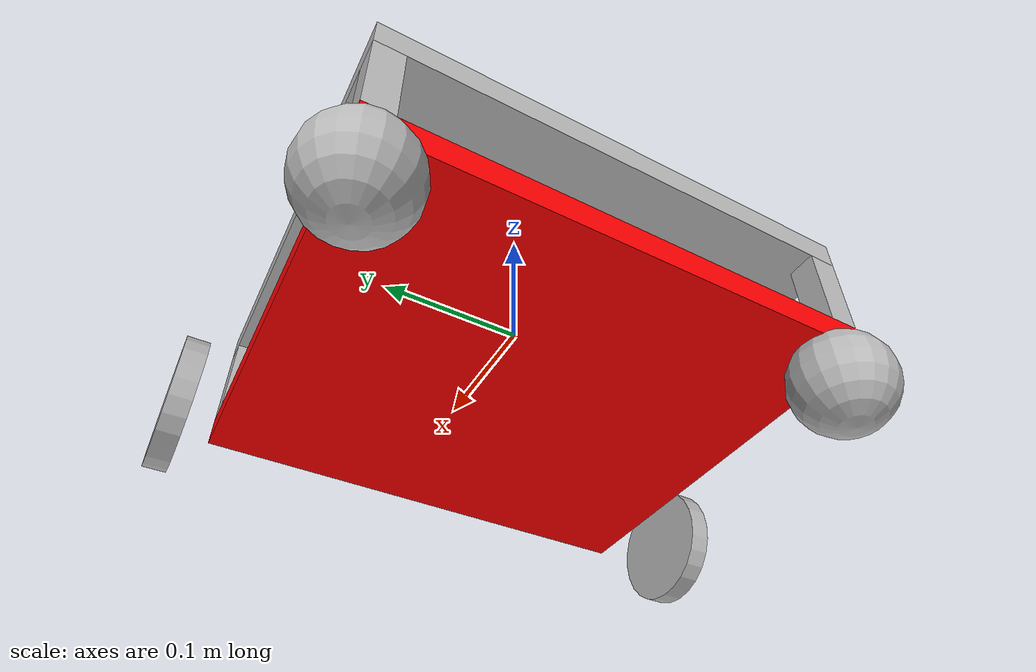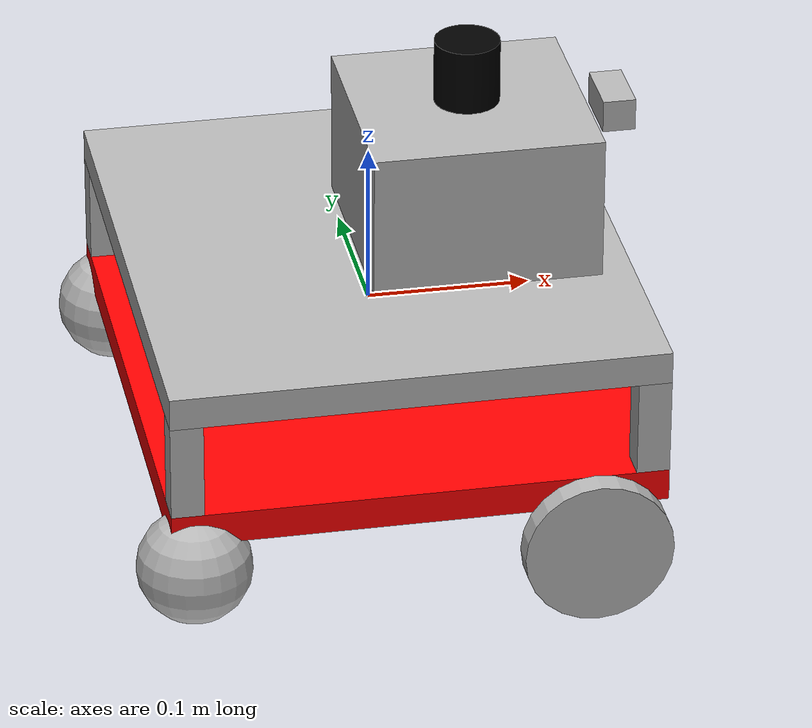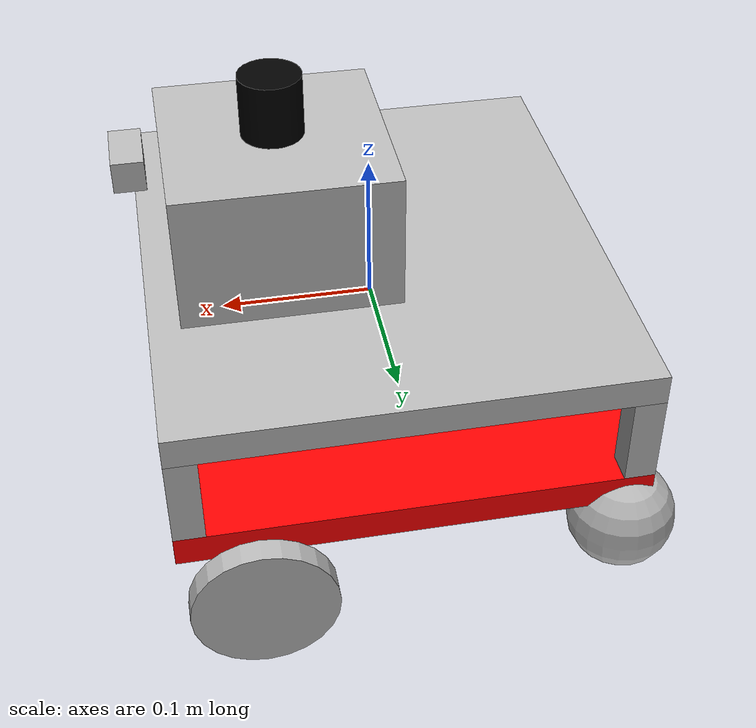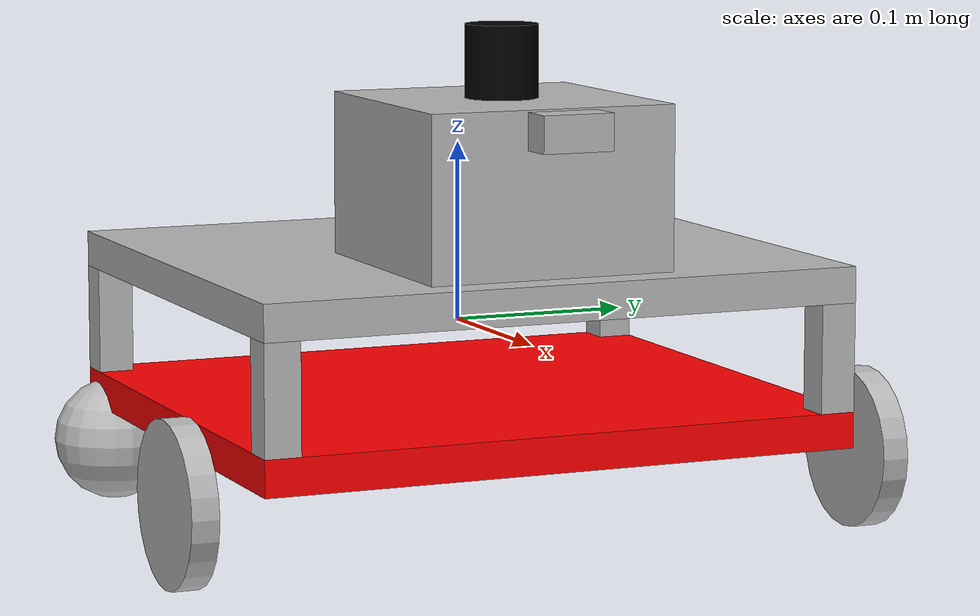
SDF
<?xml version="1.0" ?>
<sdf version="1.5">
  <model name="two_wheeled_robot">
  <static>false</static>

  <!-- ****************** ROBOT BASE FOOTPRINT ***************************  -->
  <pose>0.0 0.0 0.0 0.0 0.0 0.0</pose>
  <link name="base_footprint"/>

  <!-- ********************** ROBOT BASE *********************************  -->
  <link name="base_link">

    <collision name="base_collision">
      <pose>0 0 0.1 0 0 0</pose>
      <geometry>
        <box>
          <size>0.30 0.34 0.02</size>
        </box>
      </geometry>

    </collision>

    <visual name="base_visual">
      <pose>0 0 -0.05 0 0 0</pose>
      <geometry>
        <box>
          <size>0.30 0.34 0.02</size>
        </box>
      </geometry>
      <material>
        <ambient>1.0 0.0 0.0 1.0</ambient>
        <diffuse>1.0 0.0 0.0 1.0</diffuse>
        <specular>0.0 0.0 0.0 1.0</specular>
        <emissive>0.0 0.0 0.0 1.0</emissive>
      </material>
    </visual>
     <inertial>
     		 <ixx>0.004878</ixx>
				  <ixy>0</ixy>
				  <ixz>0</ixz>
				  <iyy>0.00090164</iyy>
				  <iyz>-0.00014394</iyz>
				  <izz>0.0042946</izz>
      	<mass>10</mass>
      </inertial>
  </link>

  <link name="left_front_lower_pillar">
  	<visual name="visual">
      <pose>0.14 .16 -0.01 0 0 0</pose>
      <geometry>
        <box>
          <size>0.02 0.02 0.06</size>
        </box>
      </geometry>
     </visual>
  </link>

  <link name="right_front_lower_pillar">
  	<visual name="visual">
      <pose>0.14 -0.16 -0.01 0 0 0</pose>
      <geometry>
        <box>
          <size>0.02 0.02 0.06</size>
        </box>
      </geometry>
     </visual>
  </link>

  <link name="right_rear_lower_pillar">
  	<visual name="visual">
      <pose>-0.14 -0.16 -0.01 0 0 0</pose>
      <geometry>
        <box>
          <size>0.02 0.02 0.06</size>
        </box>
      </geometry>
     </visual>
  </link>
  <link name="left_rear_lower_pillar">
  	<visual name="visual">
      <pose>-0.14 0.16 -0.01 0 0 0</pose>
      <geometry>
        <box>
          <size>0.02 0.02 0.06</size>
        </box>
      </geometry>
     </visual>
  </link>
  <link name="mid_platform">
			<visual name="mid_visual">
		    <pose>0 0 0.03 1.5707963267949 0 3.141592654</pose>
		    <geometry>
		      <box>
		        <size>0.30 0.02 0.34</size>
		      </box>
		    </geometry>
		  </visual>
		  <collision name="collision">
		    <pose>0 0 0.03 1.5707963267949 0 3.141592654</pose>
		    <geometry>
		      <box>
		        <size>0.30 0.02 0.34</size>
		      </box>
		    </geometry>
		  </collision>
		  <inertial>
     		 <ixx>0.004878</ixx>
				  <ixy>0</ixy>
				  <ixz>0</ixz>
				  <iyy>0.00090164</iyy>
				  <iyz>-0.00014394</iyz>
				  <izz>0.0042946</izz>
      	<mass>10</mass>
      </inertial>
   </link>
   <link name="sensor_tower">
			<visual name="visual">
		    <pose>0.06 0 0.08 0 0 0</pose>
		    <geometry>
		      <box>
		        <size>0.14 0.14 0.1</size>
		      </box>
		    </geometry>
		  </visual>
		  <collision name="collision">
		    <pose>0.06 0 0.08 0 0 0</pose>
		    <geometry>
		      <box>
		        <size>0.14 0.14 0.1</size>
		      </box>
		    </geometry>
		  </collision>
		  <inertial>
     		  <ixx>0.004878</ixx>
				  <ixy>0</ixy>
				  <ixz>0</ixz>
				  <iyy>0.00090164</iyy>
				  <iyz>-0.00014394</iyz>
				  <izz>0.000006</izz>
      	<mass>1</mass>
      </inertial>
   </link>
  <!-- *********************** CAMERA ********************************** -->
  <link name="camera_link">

 		<visual name="camera_visual">
 			<pose>0.15 0 0.12 0 0 0</pose>
      <geometry>
    		<box>
    			<size>0.02 0.04 0.02</size>
    		</box>
      </geometry>
    </visual>
		<collision name="camera_collision">
		  <pose>0.15 0 0.12 0 0 0</pose>
		  <geometry>
    		<box>
    			<size>0.02 0.04 0.02</size>
    		</box>
      </geometry>
		</collision>
    <sensor name='camera1' type='camera'>
    	<pose>0.15 0 0.12 0 0 0</pose>
				<camera name="head">
					<horizontal_fov>1.3962634</horizontal_fov>
					<image>
					  <width>640</width>
					  <height>480</height>
					  <format>R8G8B8</format>
					</image>
					<clip>
					  <near>0.1</near>
					  <far>300</far>
					</clip>
				</camera>
				<update_rate>30</update_rate>
				<visualize>1</visualize>
				<plugin name="camera_controller" filename="libgazebo_ros_camera.so">
					<always_on>true</always_on>
					<camera_name>main_camera</camera_name>
					<imageTopicName>image_raw</imageTopicName>
					<cameraInfoTopicName>camera_info</cameraInfoTopicName>
					<frame_name>camera_link</frame_name>
			</plugin>
		</sensor>
  </link>

  <!-- *********************** IMU SENSOR SETUP **************************  -->
  <link name="imu_link">
    <gravity>true</gravity>
    <sensor name="bmb_imu" type="imu">
      <always_on>true</always_on>
      <update_rate>100</update_rate>
      <visualize>true</visualize>
      <imu>
        <orientation>
          <x>
            <noise type="gaussian">
              <mean>0.0</mean>
              <stddev>2e-3</stddev>
            </noise>
          </x>
          <y>
            <noise type="gaussian">
              <mean>0.0</mean>
              <stddev>2e-3</stddev>
            </noise>
          </y>
          <z>
            <noise type="gaussian">
              <mean>0.0</mean>
              <stddev>2e-3</stddev>
            </noise>
          </z>
        </orientation>
        <angular_velocity>
          <x>
            <noise type="gaussian">
              <mean>0.0</mean>
              <stddev>2e-4</stddev>
            </noise>
          </x>
          <y>
            <noise type="gaussian">
              <mean>0.0</mean>
              <stddev>2e-4</stddev>
            </noise>
          </y>
          <z>
            <noise type="gaussian">
              <mean>0.0</mean>
              <stddev>2e-4</stddev>
            </noise>
          </z>
        </angular_velocity>
        <linear_acceleration>
          <x>
            <noise type="gaussian">
              <mean>0.0</mean>
              <stddev>1.7e-2</stddev>
            </noise>
          </x>
          <y>
            <noise type="gaussian">
              <mean>0.0</mean>
              <stddev>1.7e-2</stddev>
            </noise>
          </y>
          <z>
            <noise type="gaussian">
              <mean>0.0</mean>
              <stddev>1.7e-2</stddev>
            </noise>
          </z>
        </linear_acceleration>
      </imu>
      <plugin name="basic_mobile_bot_imu" filename="libgazebo_ros_imu_sensor.so">
        <initial_orientation_as_reference>false</initial_orientation_as_reference>
        <frame_name>imu_link</frame_name>
        <ros>
          <namespace>/imu</namespace>
          <remapping>~/out:=data</remapping>
        </ros>
      </plugin>
    </sensor>
  </link>

  <!-- *********************** GPS SETUP *********************************  -->
  <link name="gps_link">
    <sensor name="bmb_gps" type="gps">
      <always_on>true</always_on>
      <update_rate>10.0</update_rate>
      <gps>
        <position_sensing>
          <horizontal>
            <noise type="gaussian">
              <mean>0.0</mean>
              <stddev>1e-2</stddev>
            </noise>
          </horizontal>
          <vertical>
            <noise type="gaussian">
              <mean>0.0</mean>
              <stddev>1</stddev>
            </noise>
          </vertical>
        </position_sensing>
      </gps>
      <plugin name="basic_mobile_bot_gps" filename="libgazebo_ros_gps_sensor.so">
        <ros>
          <remapping>~/out:=gps/fix</remapping>
        </ros>
      </plugin>
    </sensor>
  </link>

  <!-- *********************** DRIVE WHEELS ******************************  -->
  <link name="drivewhl_l_link">
    <pose>0.10 0.2 -0.07 0 1.570796 1.570796</pose>

    <collision name="drivewhl_l_collision">
      <geometry>
        <cylinder>
          <radius>0.045</radius>
          <length>0.015</length>
        </cylinder>
      </geometry>
    </collision>

    <visual name="drivewhl_l_visual">
      <geometry>
        <cylinder>
          <radius>0.045</radius>
          <length>0.015</length>
        </cylinder>
      </geometry>
    </visual>
  </link>

  <link name="drivewhl_r_link">
    <pose>0.10 -0.2 -0.07 0 1.570796 1.570796</pose>

    <collision name="drivewhl_r_collision">
      <geometry>
        <cylinder>
          <radius>0.045</radius>
          <length>0.015</length>
        </cylinder>
      </geometry>
    </collision>

    <visual name="drivewhl_r_visual">
      <geometry>
        <cylinder>
          <radius>0.045</radius>
          <length>0.015</length>
        </cylinder>
      </geometry>
    </visual>
  </link>

  <!-- *********************** CASTER WHEELS ******************************  -->

  <link name='rear_caster_l'>
    <pose>-0.135 0.16 -0.08 0 0 0</pose>
    <collision name='collision'>
      <geometry>
            <sphere>
                <radius>0.035</radius>
            </sphere>
        </geometry>
      <surface>
            <friction>
                <ode>
                    <mu>0.000008</mu>
                    <mu2>0.000008</mu2>
                    <slip1>0.0</slip1>
                    <slip2>0.0</slip2>
                </ode>
            </friction>
        </surface>
    </collision>
    <visual name="rear_caster_visual_r">
      <geometry>
            <sphere>
                <radius>0.035</radius>
            </sphere>
        </geometry>
    </visual>
    <inertial>
          <origin xyz="0 0 0" rpy="0 0 0"/>
          <mass value="0.25"/>
          <inertia ixx="0.1" ixy="0.0" ixz="0.0" iyy="0.1"  iyz="0.0" izz="0.1"/>
      </inertial>
  </link>

  <link name='rear_caster_r'>
    <pose>-0.135 -0.16 -0.08 0 0 0</pose>
    <collision name='collision'>
      <geometry>
            <sphere>
                <radius>0.035</radius>
            </sphere>
        </geometry>
      	<surface>
            <friction>
                <ode>
                    <mu>0.000008</mu>
                    <mu2>0.000008</mu2>
                    <slip1>0.0</slip1>
                    <slip2>0.0</slip2>
                </ode>
            </friction>
        </surface>
    </collision>
    <visual name="rear_caster_visual_r">
      <geometry>
            <sphere>
                <radius>0.035</radius>
            </sphere>
        </geometry>
    </visual>
  </link>

  <!-- ****************************** LIDAR *****************************    -->
	<link name="lidar_link">
		<inertial>
		  <pose>0.06 0 0.15 0 0 0</pose>
		  <inertia>
		    <ixx>0.001</ixx>
		    <ixy>0.000</ixy>
		    <ixz>0.000</ixz>
		    <iyy>0.001</iyy>
		    <iyz>0.000</iyz>
		    <izz>0.001</izz>
		  </inertia>
		  <mass>0.114</mass>
		</inertial>

		<collision name="lidar_collision">
		  <pose>0.06 0 0.15 0 0 0</pose>
		  <geometry>
		    <cylinder>
		      <radius>0.02</radius>
		      <length>0.04</length>
		    </cylinder>
		  </geometry>
		</collision>

		<visual name="lidar_visual">
		  <pose>0.06 0 0.15 0 0 0</pose>
		  <geometry>
		    <cylinder>
		      <radius>0.02</radius>
		      <length>0.04</length>
		    </cylinder>
		  </geometry>
		  <material>
		    <ambient>0.0 0.0 0.0 1.0</ambient>
		    <diffuse>0.0 0.0 0.0 1.0</diffuse>
		    <specular>0.0 0.0 0.0 1.0</specular>
		    <emissive>0.0 0.0 0.0 1.0</emissive>
		  </material>
		</visual>

		<sensor name="lidar" type="ray">
		  <pose>0.06 0 0.18 0 0 0</pose>
		  <always_on>true</always_on>
		  <visualize>true</visualize>
		  <update_rate>5</update_rate>
		  <ray>
		    <scan>
		      <horizontal>
		        <samples>180</samples>
		        <resolution>1.00000</resolution>
		        <min_angle>0.000000</min_angle>
		        <max_angle>6.280000</max_angle>
		      </horizontal>
		    </scan>
		    <range>
		      <min>0.120000</min>
		      <max>10.0</max>
		      <resolution>0.015000</resolution>
		    </range>
		    <noise>
		      <type>gaussian</type>
		      <mean>0.0</mean>
		      <stddev>0.01</stddev>
		    </noise>
		  </ray>
		  <plugin name="scan" filename="libgazebo_ros_ray_sensor.so">
		    <ros>
		      <remapping>~/out:=scan</remapping>
		    </ros>
		    <output_type>sensor_msgs/LaserScan</output_type>
		    <frame_name>lidar_link</frame_name>
		  </plugin>
		</sensor>
	</link>

  <!-- ************************ JOINTS ***********************************  -->
  <!-- Pose of the joint is the same as the child link frame -->
  <!-- Axis is the axis of rotation relative to the child link frame -->

  <joint name="base_joint" type="fixed">
    <parent>base_footprint</parent>
    <child>base_link</child>
    <pose>0 0 0 0 0 0</pose>
  </joint>

  <joint name="mid_platform_joint" type="fixed">
    <parent>base_link</parent>
    <child>mid_platform</child>
  </joint>
  <joint name="sensor_tower" type="fixed">
    <parent>base_link</parent>
    <child>sensor_tower</child>
  </joint>
  <joint name="r_front_piller" type="fixed">
  	<parent>base_link</parent>
  	<child>right_front_lower_pillar</child>
 	</joint>
 	<joint name="l_front_piller" type="fixed">
  	<parent>base_link</parent>
  	<child>left_front_lower_pillar</child>
 	</joint>

 	<joint name="r_rear_piller" type="fixed">
  	<parent>base_link</parent>
  	<child>right_rear_lower_pillar</child>
 	</joint>
 	<joint name="l_rear_piller" type="fixed">
  	<parent>base_link</parent>
  	<child>left_rear_lower_pillar</child>
 	</joint>

  <joint name="drivewhl_l_joint" type="revolute">
    <parent>base_link</parent>
    <child>drivewhl_l_link</child>
    <pose>0 0 0 0 0 0</pose>
    <axis>
      <xyz>0 0 1</xyz>
    </axis>
  </joint>

  <joint name="drivewhl_r_joint" type="revolute">
    <parent>base_link</parent>
    <child>drivewhl_r_link</child>
    <pose>0 0 0 0 0 0</pose>
    <axis>
      <xyz>0 0 1</xyz>
    </axis>
  </joint>

  <joint name='caster_joint_l' type='ball'>
    <parent>base_link</parent>
    <child>rear_caster_l</child>
  </joint>

  <joint name='caster_joint_r' type='ball'>
    <parent>base_link</parent>
    <child>rear_caster_r</child>
  </joint>

	<joint name="camera_joint" type="fixed">
    <parent>base_link</parent>
    <child>camera_link</child>
    <pose>0 0 0 0 0 0</pose>
  </joint>

  <joint name="lidar_joint" type="fixed">
    <parent>base_link</parent>
    <child>lidar_link</child>
    <pose>0 0 0 0 0 0</pose>
  </joint>

  <joint name="imu_joint" type="fixed">
    <parent>base_link</parent>
    <child>imu_link</child>
    <pose>0 0 0 0 0 0</pose>
  </joint>

  <joint name="gps_joint" type="fixed">
    <parent>base_link</parent>
    <child>gps_link</child>
    <pose>0 0 0 0 0 0</pose>
  </joint>

 <!-- *********************** WHEEL ODOMETRY ***************************    -->
  <plugin name="basic_mobile_bot_diff_drive" filename="libgazebo_ros_diff_drive.so">

    <update_rate>30</update_rate>

    <!-- wheels -->
    <left_joint>drivewhl_l_joint</left_joint>
    <right_joint>drivewhl_r_joint</right_joint>

    <!-- kinematics -->
    <wheel_separation>0.52</wheel_separation>
    <wheel_diameter>0.28</wheel_diameter>

    <!-- limits -->
    <max_wheel_torque>20</max_wheel_torque>
    <max_wheel_acceleration>1.0</max_wheel_acceleration>

    <!-- Receive velocity commands on this ROS topic -->
    <command_topic>cmd_vel</command_topic>

    <!-- output -->
    <!-- When false, publish no wheel odometry data to a ROS topic -->
    <publish_odom>true</publish_odom>

    <!-- When true, publish coordinate transform from odom to base_footprint -->
    <!-- I usually use the robot_localization package to publish this transform -->
    <publish_odom_tf>false</publish_odom_tf>

    <!-- When true, publish coordinate transform from base_link to the wheels -->
    <!-- The robot_state_publisher package is often used to publish this transform -->
    <publish_wheel_tf>false</publish_wheel_tf>

    <odometry_topic>odom</odometry_topic>
    <odometry_frame>odom</odometry_frame>
    <robot_base_frame>base_footprint</robot_base_frame>

    <!-- Odometry source, 0 for ENCODER, 1 for WORLD, defaults to WORLD -->
		<odometry_source>1</odometry_source>
    <!-- Change the ROS topic we will publish the odometry data to -->
    <ros>
      <remapping>odom:=wheel/odometry</remapping>
    </ros>

  </plugin>

 <!-- *********************** JOINT STATE PUBLISHER *********************   -->

  <plugin name="basic_mobile_bot_joint_state" filename="libgazebo_ros_joint_state_publisher.so">
    <ros>
      <remapping>~/out:=joint_states</remapping>
    </ros>
    <update_rate>30</update_rate>
    <joint_name>drivewhl_l_joint</joint_name>
    <joint_name>drivewhl_r_joint</joint_name>
  </plugin>

  </model>
</sdf>
